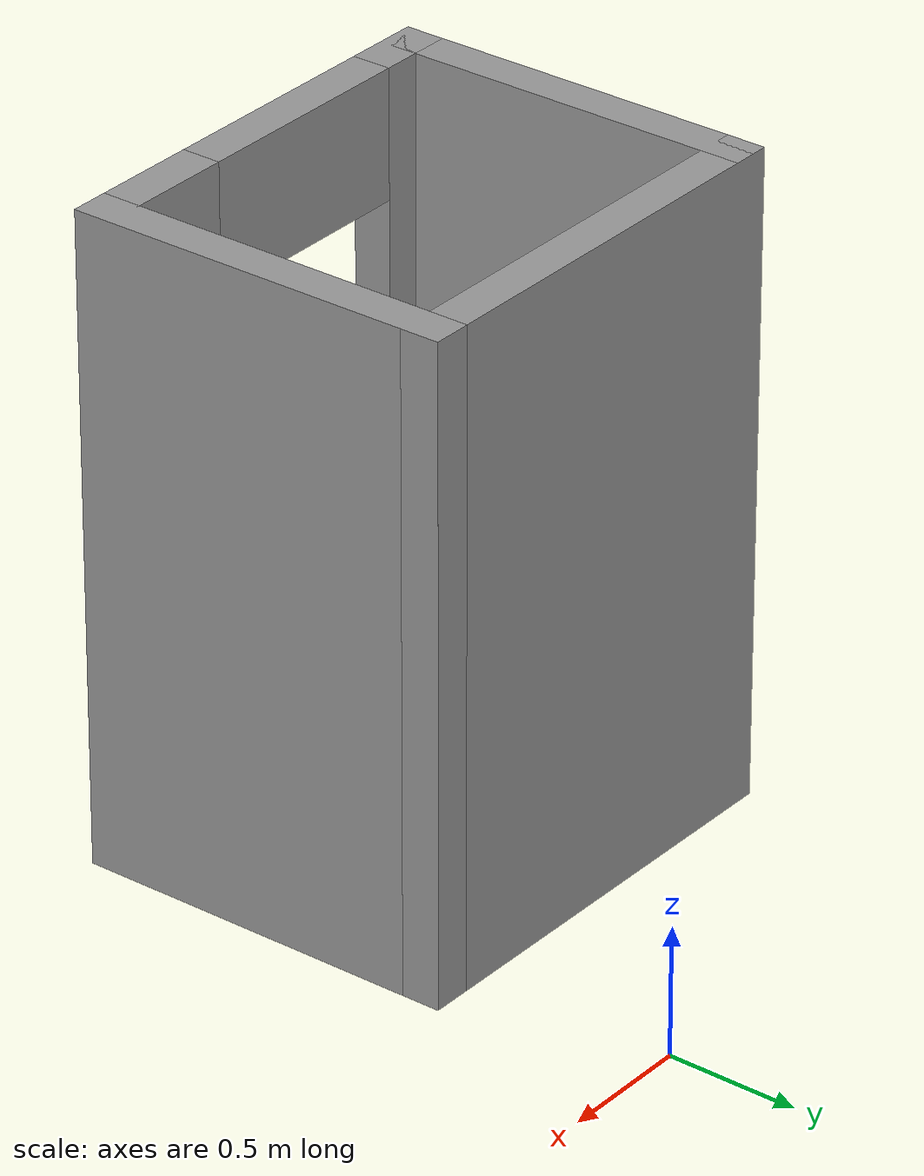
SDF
<?xml version='1.0'?>
<sdf version='1.6'>
  <model name='map'>
    <pose frame=''>-0.62 -1.515 0 0 -0 0</pose>
    <link name='Wall_0'>
      <collision name='Wall_0_Collision'>
        <geometry>
          <box>
            <size>1.75 0.15 2.5</size>
          </box>
        </geometry>
        <pose frame=''>0 0 1.25 0 -0 0</pose>
      </collision>
      <visual name='Wall_0_Visual'>
        <pose frame=''>0 0 1.25 0 -0 0</pose>
        <geometry>
          <box>
            <size>1.75 0.15 2.5</size>
          </box>
        </geometry>
        <material>
          <script>
            <uri>file://media/materials/scripts/gazebo.material</uri>
            <name>Gazebo/Grey</name>
          </script>
          <ambient>1 1 1 1</ambient>
        </material>
        <meta>
          <layer>0</layer>
        </meta>
      </visual>
      <pose frame=''>-0 0.675 0 0 -0 3.14159</pose>
    </link>
    <link name='Wall_1'>
      <collision name='Wall_1_Collision'>
        <geometry>
          <box>
            <size>1.5 0.15 2.5</size>
          </box>
        </geometry>
        <pose frame=''>0 0 1.25 0 -0 0</pose>
      </collision>
      <visual name='Wall_1_Visual'>
        <pose frame=''>0 0 1.25 0 -0 0</pose>
        <geometry>
          <box>
            <size>1.5 0.15 2.5</size>
          </box>
        </geometry>
        <material>
          <script>
            <uri>file://media/materials/scripts/gazebo.material</uri>
            <name>Gazebo/Grey</name>
          </script>
          <ambient>1 1 1 1</ambient>
        </material>
        <meta>
          <layer>0</layer>
        </meta>
      </visual>
      <pose frame=''>-0.8 0 0 0 -0 -1.5708</pose>
    </link>
    <link name='Wall_2'>
      <pose frame=''>-0 -0.675 0 0 -0 0</pose>
      <visual name='Wall_2_Visual_0'>
        <pose frame=''>-0.7275 0 1.25 0 -0 0</pose>
        <geometry>
          <box>
            <size>0.295 0.15 2.5</size>
          </box>
        </geometry>
        <material>
          <script>
            <uri>file://media/materials/scripts/gazebo.material</uri>
            <name>Gazebo/Grey</name>
          </script>
          <ambient>1 1 1 1</ambient>
        </material>
        <meta>
          <layer>0</layer>
        </meta>
      </visual>
      <collision name='Wall_2_Collision_0'>
        <geometry>
          <box>
            <size>0.295 0.15 2.5</size>
          </box>
        </geometry>
        <pose frame=''>-0.7275 0 1.25 0 -0 0</pose>
      </collision>
      <visual name='Wall_2_Visual_1'>
        <pose frame=''>0.5975 0 1.25 0 -0 0</pose>
        <geometry>
          <box>
            <size>0.555 0.15 2.5</size>
          </box>
        </geometry>
        <material>
          <script>
            <uri>file://media/materials/scripts/gazebo.material</uri>
            <name>Gazebo/Grey</name>
          </script>
          <ambient>1 1 1 1</ambient>
        </material>
        <meta>
          <layer>0</layer>
        </meta>
      </visual>
      <collision name='Wall_2_Collision_1'>
        <geometry>
          <box>
            <size>0.555 0.15 2.5</size>
          </box>
        </geometry>
        <pose frame=''>0.5975 0 1.25 0 -0 0</pose>
      </collision>
      <visual name='Wall_2_Visual_2'>
        <pose frame=''>-0.13 0 2.25 0 -0 0</pose>
        <geometry>
          <box>
            <size>0.9 0.15 0.5</size>
          </box>
        </geometry>
        <material>
          <script>
            <uri>file://media/materials/scripts/gazebo.material</uri>
            <name>Gazebo/Grey</name>
          </script>
          <ambient>1 1 1 1</ambient>
        </material>
        <meta>
          <layer>0</layer>
        </meta>
      </visual>
      <collision name='Wall_2_Collision_2'>
        <geometry>
          <box>
            <size>0.9 0.15 0.5</size>
          </box>
        </geometry>
        <pose frame=''>-0.13 0 2.25 0 -0 0</pose>
      </collision>
    </link>
    <link name='Wall_3'>
      <collision name='Wall_3_Collision'>
        <geometry>
          <box>
            <size>1.5 0.15 2.5</size>
          </box>
        </geometry>
        <pose frame=''>0 0 1.25 0 -0 0</pose>
      </collision>
      <visual name='Wall_3_Visual'>
        <pose frame=''>0 0 1.25 0 -0 0</pose>
        <geometry>
          <box>
            <size>1.5 0.15 2.5</size>
          </box>
        </geometry>
        <material>
          <script>
            <uri>file://media/materials/scripts/gazebo.material</uri>
            <name>Gazebo/Grey</name>
          </script>
          <ambient>1 1 1 1</ambient>
        </material>
        <meta>
          <layer>0</layer>
        </meta>
      </visual>
      <pose frame=''>0.8 0 0 0 -0 1.5708</pose>
    </link>
    <static>1</static>
  </model>
</sdf>
